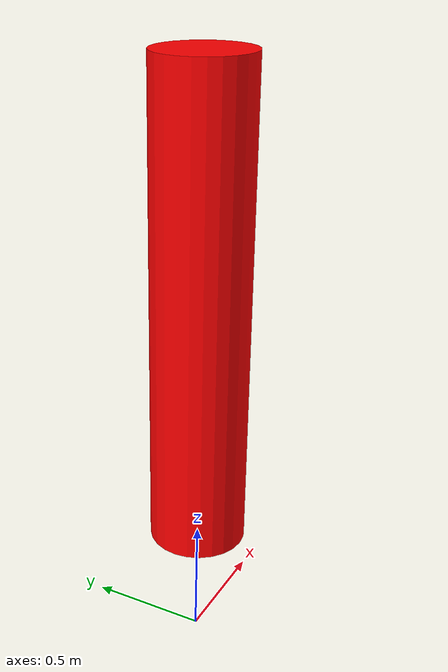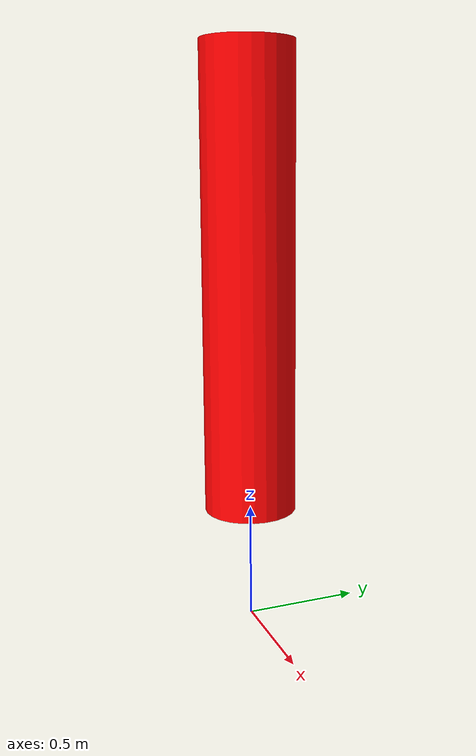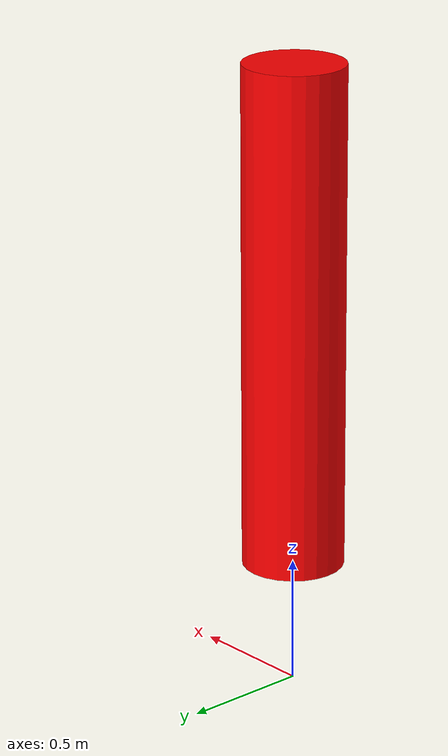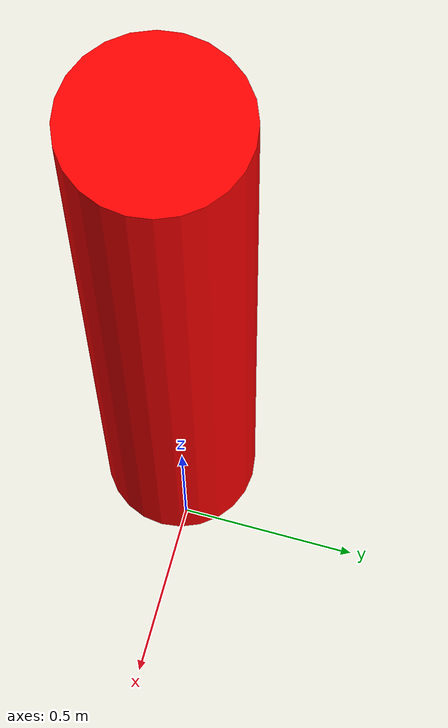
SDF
<?xml version='1.0'?>
<sdf version='1.6'>
  <model name='Pole'>
    <link name='link_14'>
      <pose frame=''>-0 0 0 0 -0 0</pose>
      <visual name='visual'>
        <pose frame=''>0 0 1.5 0 -0 0</pose>
        <geometry>
          <cylinder>
            <radius>0.2</radius>
            <length>2</length>
          </cylinder>
        </geometry>
        <material>
          <lighting>1</lighting>
          <script>
            <uri>file://media/materials/scripts/gazebo.material</uri>
            <name>Gazebo/Grey</name>
          </script>
          <ambient>1 0 0 1</ambient>
          <diffuse>1 0 0 1</diffuse>
          <specular>1 0 0 1</specular>
          <emissive>1 0 0 1</emissive>
          <shader type='vertex'>
            <normal_map>__default__</normal_map>
          </shader>
        </material>
        <cast_shadows>1</cast_shadows>
        <transparency>0</transparency>
      </visual>
      <collision name='collision'>
        <laser_retro>0</laser_retro>
        <max_contacts>10</max_contacts>
        <pose frame=''>0 0 1.5 0 -0 0</pose>
        <geometry>
          <cylinder>
            <radius>0.2</radius>
            <length>2</length>
          </cylinder>
        </geometry>
      </collision>
    </link>
    <static>1</static>
  </model>
</sdf>
